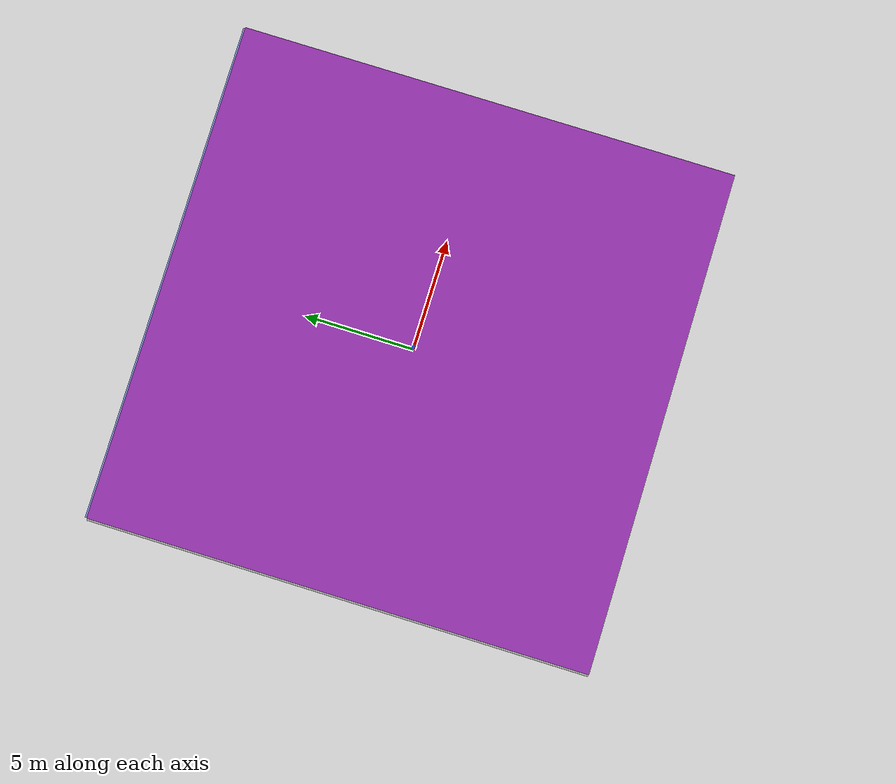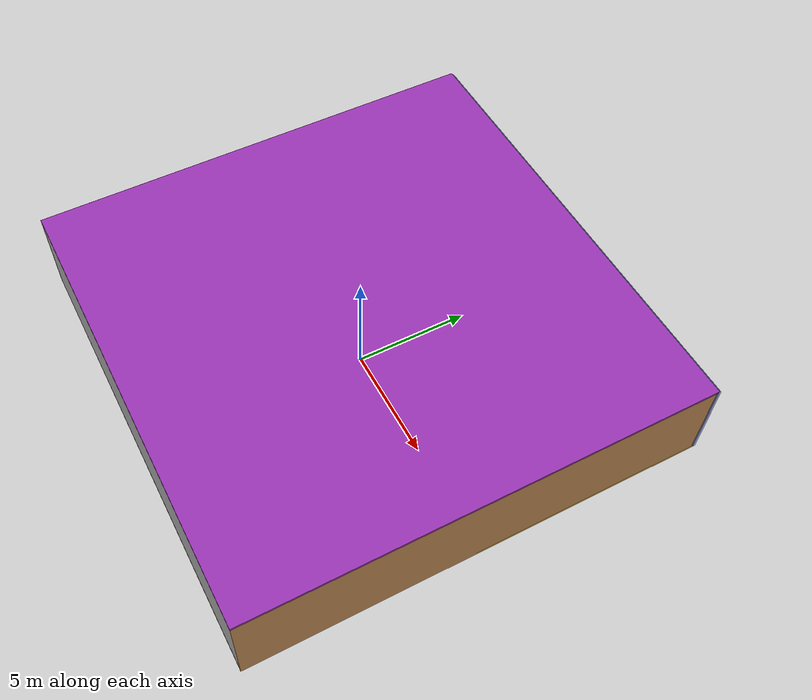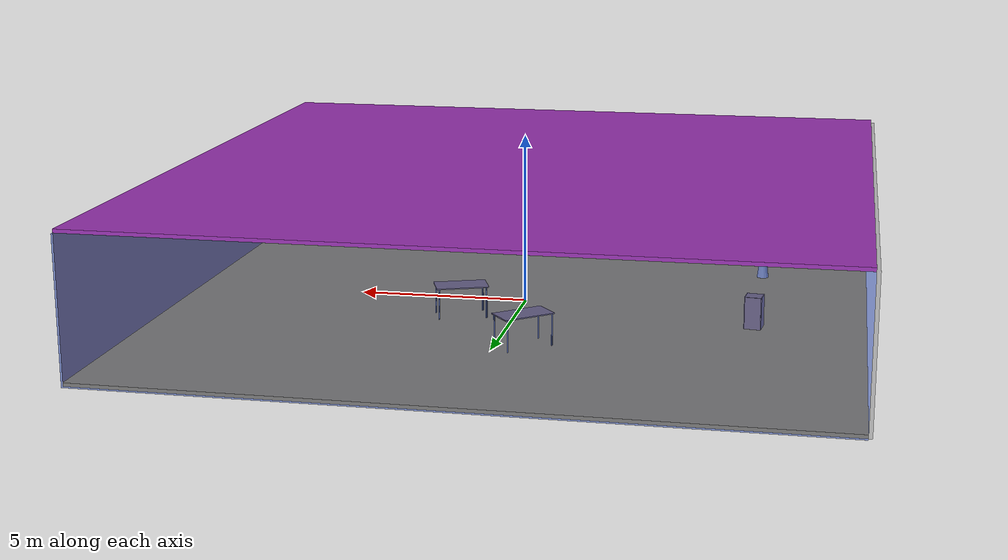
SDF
<sdf version="1.4">
 <world name="default">
  <physics type="ode">
   <max_step_size>0.001</max_step_size>
   <real_time_factor>1</real_time_factor>
   <real_time_update_rate>1000</real_time_update_rate>
   <gravity>0 0 -9.8</gravity>
  </physics>
  <scene><ambient>0.4 0.4 0.4 1</ambient><background>0.7 0.7 0.7 1</background><shadows>1</shadows></scene>
  <model name="Surrounding">
   <static>1</static>
   <link name="Ceiling">
    <collision name="Ceiling_Collision"><geometry><box><size>20 20 0.1</size></box></geometry></collision>
    <visual name="Ceiling_Visual">
     <geometry><box><size>20 20 0.1</size></box></geometry>
     <material>
      <script><uri>file://media/materials/scripts/gazebo.material</uri><name>Gazebo/Purple</name></script>
     </material>
    </visual>
    <pose>0 0 4.05 0 0 0</pose>
   </link>
   <link name="Wall_South">
    <collision name="Wall_South_Collision">
     <geometry><box><size>20 0 4</size></box></geometry>
     <pose>0 0 2 0 -0 0</pose>
    </collision>
    <visual name="Wall_South_Visual">
     <pose>0 0 2 0 -0 0</pose>
     <geometry><box><size>20 0 4</size></box></geometry>
     <material>
      <script><uri>file://media/materials/scripts/gazebo.material</uri><name>Gazebo/JointAnchor</name></script>
     </material>
    </visual>
    <velocity_decay><linear>0</linear><angular>0</angular></velocity_decay>
    <pose>0 -10 0 0 -0 0</pose>
   </link>
   <link name="Wall_East">
    <collision name="Wall_21_Collision">
     <geometry><box><size>20 0 4</size></box></geometry>
     <pose>0 0 2 0 -0 0</pose>
    </collision>
    <visual name="Wall_21_Visual">
     <pose>0 0 2 0 -0 0</pose>
     <geometry><box><size>20 0 4</size></box></geometry>
     <material>
      <script><uri>file://media/materials/scripts/gazebo.material</uri><name>Gazebo/WoodFloor</name></script>
     </material>
    </visual>
    <velocity_decay><linear>0</linear><angular>0</angular></velocity_decay>
    <pose>10 0 0 0 -0 1.5708</pose>
   </link>
   <link name="Wall_North">
    <collision name="Wall_22_Collision">
     <geometry><box><size>20 0.2 4</size></box></geometry>
     <pose>0 0 2 0 -0 0</pose>
    </collision>
    <visual name="Wall_22_Visual">
     <pose>0 0 2 0 -0 0</pose>
     <geometry><box><size>20 0.2 4</size></box></geometry>
     <material>
      <script><uri>file://media/materials/scripts/gazebo.material</uri><name>Gazebo/BlueTransparent</name></script>
     </material>
    </visual>
    <velocity_decay><linear>0</linear><angular>0</angular></velocity_decay>
    <pose>0 10 0 0 -0 0</pose>
   </link>
   <link name="Wall_West">
    <collision name="Wall_23_Collision">
     <geometry><box><size>20 0.2 4</size></box></geometry>
     <pose>0 0 2 0 -0 0</pose>
    </collision>
    <visual name="Wall_23_Visual">
     <pose>0 0 2 0 -0 0</pose>
     <geometry><box><size>20 0.2 4</size></box></geometry>
     <material>
      <script><uri>file://media/materials/scripts/gazebo.material</uri><name>Gazebo/GreyTransparent</name></script>
     </material>
    </visual>
    <velocity_decay><linear>0</linear><angular>0</angular></velocity_decay>
    <pose>-10 0 0 0 0 -1.5708</pose>
   </link>
   <link name="Ground_link">
    <collision name="collision">
     <pose>0 0 .05 0 -0 0</pose>
     <geometry><box><size>20 20 0.1</size></box></geometry>
    </collision>
    <visual name="visual">
     <pose>0 0 .05 0 -0 0</pose>
     <geometry><box><size>20 20 0.1</size></box></geometry>
     <material>
      <script><uri>file://media/materials/scripts/gazebo.material</uri><name>Gazebo/Gold</name></script>
     </material>
    </visual>
   </link>
   <static>1</static>
  </model>
  <spherical_coordinates>
   <surface_model>EARTH_WGS84</surface_model>
   <latitude_deg>0</latitude_deg>
   <longitude_deg>0</longitude_deg>
   <elevation>0</elevation>
   <heading_deg>0</heading_deg>
  </spherical_coordinates>
  <light name="lightball_0" type="diffuse">
   <diffuse>0.8 0.8 0.8 1</diffuse>
   <specular>0.2 0.2 0.2 1</specular>
   <attenuation>
    <range>100</range>
    <constant>0.7</constant>
    <linear>0.01</linear>
    <quadratic>0.001</quadratic>
   </attenuation>
   <direction>-0.5 0.1 -0.9</direction>
   <pose>-7.0221130712 4.44595572864 0.982963317497 0 0 0</pose>
  </light>
  <light name="lightball_1" type="diffuse">
   <diffuse>0.8 0.8 0.8 1</diffuse>
   <specular>0.2 0.2 0.2 1</specular>
   <attenuation>
    <range>100</range>
    <constant>0.7</constant>
    <linear>0.01</linear>
    <quadratic>0.001</quadratic>
   </attenuation>
   <direction>-0.5 0.1 -0.9</direction>
   <pose>-4.08871718535 -6.97036535205 2.59696566164 0 0 0</pose>
  </light>
  <light name="lightball_2" type="diffuse">
   <diffuse>0.8 0.8 0.8 1</diffuse>
   <specular>0.2 0.2 0.2 1</specular>
   <attenuation>
    <range>100</range>
    <constant>0.7</constant>
    <linear>0.01</linear>
    <quadratic>0.001</quadratic>
   </attenuation>
   <direction>-0.5 0.1 -0.9</direction>
   <pose>-2.92466432537 -9.22336242677 2.68320632824 0 0 0</pose>
  </light>
  <light name="lightball_3" type="diffuse">
   <diffuse>0.8 0.8 0.8 1</diffuse>
   <specular>0.2 0.2 0.2 1</specular>
   <attenuation>
    <range>100</range>
    <constant>0.7</constant>
    <linear>0.01</linear>
    <quadratic>0.001</quadratic>
   </attenuation>
   <direction>-0.5 0.1 -0.9</direction>
   <pose>8.13846208704 6.03519834956 2.77009763523 0 0 0</pose>
  </light>
  <light name="lightball_4" type="diffuse">
   <diffuse>0.8 0.8 0.8 1</diffuse>
   <specular>0.2 0.2 0.2 1</specular>
   <attenuation>
    <range>100</range>
    <constant>0.7</constant>
    <linear>0.01</linear>
    <quadratic>0.001</quadratic>
   </attenuation>
   <direction>-0.5 0.1 -0.9</direction>
   <pose>6.76817041899 -5.24779843504 0.576662341573 0 0 0</pose>
  </light>
  <light name="lightball_5" type="diffuse">
   <diffuse>0.8 0.8 0.8 1</diffuse>
   <specular>0.2 0.2 0.2 1</specular>
   <attenuation>
    <range>100</range>
    <constant>0.7</constant>
    <linear>0.01</linear>
    <quadratic>0.001</quadratic>
   </attenuation>
   <direction>-0.5 0.1 -0.9</direction>
   <pose>8.99160012023 3.15213794196 2.19442689658 0 0 0</pose>
  </light>
  <light name="lightball_6" type="diffuse">
   <diffuse>0.8 0.8 0.8 1</diffuse>
   <specular>0.2 0.2 0.2 1</specular>
   <attenuation>
    <range>100</range>
    <constant>0.7</constant>
    <linear>0.01</linear>
    <quadratic>0.001</quadratic>
   </attenuation>
   <direction>-0.5 0.1 -0.9</direction>
   <pose>-6.34590727839 -5.52040947115 3.64296693648 0 0 0</pose>
  </light>
  <light name="lightball_7" type="diffuse">
   <diffuse>0.8 0.8 0.8 1</diffuse>
   <specular>0.2 0.2 0.2 1</specular>
   <attenuation>
    <range>100</range>
    <constant>0.7</constant>
    <linear>0.01</linear>
    <quadratic>0.001</quadratic>
   </attenuation>
   <direction>-0.5 0.1 -0.9</direction>
   <pose>6.15433838228 -8.80467350246 2.29758422914 0 0 0</pose>
  </light>
  <light name="lightball_8" type="diffuse">
   <diffuse>0.8 0.8 0.8 1</diffuse>
   <specular>0.2 0.2 0.2 1</specular>
   <attenuation>
    <range>100</range>
    <constant>0.7</constant>
    <linear>0.01</linear>
    <quadratic>0.001</quadratic>
   </attenuation>
   <direction>-0.5 0.1 -0.9</direction>
   <pose>4.61682635253 -9.64612700389 1.29119901261 0 0 0</pose>
  </light>
  <light name="lightball_9" type="diffuse">
   <diffuse>0.8 0.8 0.8 1</diffuse>
   <specular>0.2 0.2 0.2 1</specular>
   <attenuation>
    <range>100</range>
    <constant>0.7</constant>
    <linear>0.01</linear>
    <quadratic>0.001</quadratic>
   </attenuation>
   <direction>-0.5 0.1 -0.9</direction>
   <pose>-8.78027617488 4.38360493023 3.31961379639 0 0 0</pose>
  </light>
  <light name="lightball_10" type="diffuse">
   <diffuse>0.8 0.8 0.8 1</diffuse>
   <specular>0.2 0.2 0.2 1</specular>
   <attenuation>
    <range>100</range>
    <constant>0.7</constant>
    <linear>0.01</linear>
    <quadratic>0.001</quadratic>
   </attenuation>
   <direction>-0.5 0.1 -0.9</direction>
   <pose>-8.21571336363 -7.80942783264 3.49911171962 0 0 0</pose>
  </light>
  <light name="lightball_11" type="diffuse">
   <diffuse>0.8 0.8 0.8 1</diffuse>
   <specular>0.2 0.2 0.2 1</specular>
   <attenuation>
    <range>100</range>
    <constant>0.7</constant>
    <linear>0.01</linear>
    <quadratic>0.001</quadratic>
   </attenuation>
   <direction>-0.5 0.1 -0.9</direction>
   <pose>-3.75497015258 2.58260642178 1.70271898652 0 0 0</pose>
  </light>
  <light name="lightball_12" type="diffuse">
   <diffuse>0.8 0.8 0.8 1</diffuse>
   <specular>0.2 0.2 0.2 1</specular>
   <attenuation>
    <range>100</range>
    <constant>0.7</constant>
    <linear>0.01</linear>
    <quadratic>0.001</quadratic>
   </attenuation>
   <direction>-0.5 0.1 -0.9</direction>
   <pose>9.70005035725 -2.13141566924 2.11990121583 0 0 0</pose>
  </light>
  <light name="lightball_13" type="diffuse">
   <diffuse>0.8 0.8 0.8 1</diffuse>
   <specular>0.2 0.2 0.2 1</specular>
   <attenuation>
    <range>100</range>
    <constant>0.7</constant>
    <linear>0.01</linear>
    <quadratic>0.001</quadratic>
   </attenuation>
   <direction>-0.5 0.1 -0.9</direction>
   <pose>5.74372036052 8.55418477823 0.832400764261 0 0 0</pose>
  </light>
  <include>
   <uri>model://construction_cone</uri>
   <pose>-6.82558127489 -3.71028811164 0 0 0 0.742131141379</pose>
  </include>
  <include><uri>model://cabinet</uri><pose>-6.86983934807 1.82115603131 0 0 0 1.45150708605</pose></include>
  <include>
   <uri>model://construction_cone</uri>
   <pose>-1.25063329165 -7.69446919498 0 0 0 2.67458145739</pose>
  </include>
  <include><uri>model://table</uri><pose>-0.839247095916 4.71354134139 0 0 0 0.692877309192</pose></include>
  <include><uri>model://table</uri><pose>1.46340793098 2.1673504082 0 0 0 0.356475473066</pose></include>
 </world>
</sdf>

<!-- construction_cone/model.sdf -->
<sdf version="1.5">
  <model name="Construction Cone">
    <link name="link">
      <collision name="collision">
        <geometry>
          <mesh>
            <scale>10 10 10</scale>
            <uri>file://isr-testbed/construction_cone/meshes/construction_cone.dae</uri>
          </mesh>
        </geometry>
      </collision>
      <visual name="visual">
        <geometry>
          <mesh>
            <scale>10 10 10</scale>
            <uri>file://isr-testbed/construction_cone/meshes/construction_cone.dae</uri>
          </mesh>
        </geometry>
      </visual>
    </link>
  </model>
</sdf>

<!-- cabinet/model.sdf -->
<sdf version="1.5">
  <model name="cabinet">
    <static>true</static>
    <link name="cabinet_bottom_plate">
      <inertial>
        <pose>0 0 -1 0 0 0</pose>
        <inertia>
          <ixx>2.050000</ixx>
          <ixy>0</ixy>
          <ixz>0</ixz>
          <iyy>2.050000</iyy>
          <iyz>0</iyz>
          <izz>2.050000</izz>
        </inertia>
        <mass>25.000000</mass>
      </inertial>
      <collision name="cabinet_bottom_plate_geom">
        <pose>0 0 0.010000 0 0 0</pose>
        <geometry>
          <box>
            <size>0.450000 0.450000 0.020000</size>
          </box>
        </geometry>
      </collision>
      <visual name="cabinet_bottom_plate_geom_visual">
        <pose>0 0 0.010000 0 0 0</pose>
        <geometry>
          <box>
            <size>0.450000 0.450000 0.020000</size>
          </box>
        </geometry>
        <material>
          <script>
            <uri>model://media/materials/scripts/gazebo.material</uri>
            <name>Gazebo/Wood</name>
          </script>
        </material>
      </visual>
      <collision name="cabinet_bottom_plate_geom_cabinet_back_plate">
        <pose>0.235000 0 0.510000 0 0 0</pose>
        <geometry>
          <box>
            <size>0.020000 0.450000 1.020000</size>
          </box>
        </geometry>
      </collision>
      <visual name="cabinet_bottom_plate_geom_cabinet_back_plate_visual">
        <pose>0.235000 0 0.510000 0 0 0</pose>
        <geometry>
          <box>
            <size>0.020000 0.450000 1.020000</size>
          </box>
        </geometry>
        <material>
          <script>
            <uri>model://media/materials/scripts/gazebo.material</uri>
            <name>Gazebo/Wood</name>
          </script>
        </material>
      </visual>
      <collision name="cabinet_bottom_plate_geom_cabinet_left_plate">
        <pose>0 0.235000 0.510000 0 0 0</pose>
        <geometry>
          <box>
            <size>0.450000 0.020000 1.020000</size>
          </box>
        </geometry>
      </collision>
      <visual name="cabinet_bottom_plate_geom_cabinet_left_plate_visual">
        <pose>0 0.235000 0.510000 0 0 0</pose>
        <geometry>
          <box>
            <size>0.450000 0.020000 1.020000</size>
          </box>
        </geometry>
        <material>
          <script>
            <uri>model://media/materials/scripts/gazebo.material</uri>
            <name>Gazebo/Wood</name>
          </script>
        </material>
      </visual>
      <collision name="cabinet_bottom_plate_geom_cabinet_middle_plate">
        <pose>0 0 0.510000 0 0 0</pose>
        <geometry>
          <box>
            <size>0.450000 0.450000 0.020000</size>
          </box>
        </geometry>
      </collision>
      <visual name="cabinet_bottom_plate_geom_cabinet_middle_plate_visual">
        <pose>0 0 0.510000 0 0 0</pose>
        <geometry>
          <box>
            <size>0.450000 0.450000 0.020000</size>
          </box>
        </geometry>
        <material>
          <script>
            <uri>model://media/materials/scripts/gazebo.material</uri>
            <name>Gazebo/Wood</name>
          </script>
        </material>
      </visual>
      <collision name="cabinet_bottom_plate_geom_cabinet_right_plate">
        <pose>0 -0.235000 0.510000 0 0 0</pose>
        <geometry>
          <box>
            <size>0.450000 0.020000 1.020000</size>
          </box>
        </geometry>
      </collision>
      <visual name="cabinet_bottom_plate_geom_cabinet_right_plate_visual">
        <pose>0 -0.235000 0.510000 0 0 0</pose>
        <geometry>
          <box>
            <size>0.450000 0.020000 1.020000</size>
          </box>
        </geometry>
        <material>
          <script>
            <uri>model://media/materials/scripts/gazebo.material</uri>
            <name>Gazebo/Wood</name>
          </script>
        </material>
      </visual>
      <collision name="cabinet_bottom_plate_geom_cabinet_top_plate">
        <pose>0 0 1.010000 0 0 0</pose>
        <geometry>
          <box>
            <size>0.450000 0.450000 0.020000</size>
          </box>
        </geometry>
      </collision>
      <visual name="cabinet_bottom_plate_geom_cabinet_top_plate_visual">
        <pose>0 0 1.010000 0 0 0</pose>
        <geometry>
          <box>
            <size>0.450000 0.450000 0.020000</size>
          </box>
        </geometry>
        <material>
          <script>
            <uri>model://media/materials/scripts/gazebo.material</uri>
            <name>Gazebo/Wood</name>
          </script>
        </material>
      </visual>
    </link>
  </model>
</sdf>

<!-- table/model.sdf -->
<sdf version="1.5">
  <model name="table">
    <static>true</static>
    <link name="link">
      <collision name="surface">
        <pose>0 0 1.0 0 0 0</pose>
        <geometry>
          <box>
            <size>1.5 0.8 0.03</size>
          </box>
        </geometry>
        <surface>
          <friction>
            <ode>
              <mu>0.6</mu>
              <mu2>0.6</mu2>
            </ode>
          </friction>
        </surface>
      </collision>
      <visual name="visual1">
        <pose>0 0 1.0 0 0 0</pose>
        <geometry>
          <box>
            <size>1.5 0.8 0.03</size>
          </box>
        </geometry>
        <material>
          <script>
            <uri>model://media/materials/scripts/gazebo.material</uri>
            <name>Gazebo/Wood</name>
          </script>
        </material>
      </visual>
      <collision name="front_left_leg">
        <pose>0.68 0.38 0.5 0 0 0</pose>
        <geometry>
          <cylinder>
            <radius>0.02</radius>
            <length>1.0</length>
          </cylinder>
        </geometry>
      </collision>
      <visual name="front_left_leg">
        <pose>0.68 0.38 0.5 0 0 0</pose>
        <geometry>
          <cylinder>
            <radius>0.02</radius>
            <length>1.0</length>
          </cylinder>
        </geometry>
        <material>
          <script>
            <uri>model://media/materials/scripts/gazebo.material</uri>
            <name>Gazebo/Grey</name>
          </script>
        </material>
      </visual>
      <collision name="front_right_leg">
        <pose>0.68 -0.38 0.5 0 0 0</pose>
        <geometry>
          <cylinder>
            <radius>0.02</radius>
            <length>1.0</length>
          </cylinder>
        </geometry>
      </collision>
      <visual name="front_right_leg">
        <pose>0.68 -0.38 0.5 0 0 0</pose>
        <geometry>
          <cylinder>
            <radius>0.02</radius>
            <length>1.0</length>
          </cylinder>
        </geometry>
        <material>
          <script>
            <uri>model://media/materials/scripts/gazebo.material</uri>
            <name>Gazebo/Grey</name>
          </script>
        </material>
      </visual>
      <collision name="back_right_leg">
        <pose>-0.68 -0.38 0.5 0 0 0</pose>
        <geometry>
          <cylinder>
            <radius>0.02</radius>
            <length>1.0</length>
          </cylinder>
        </geometry>
      </collision>
      <visual name="back_right_leg">
        <pose>-0.68 -0.38 0.5 0 0 0</pose>
        <geometry>
          <cylinder>
            <radius>0.02</radius>
            <length>1.0</length>
          </cylinder>
        </geometry>
        <material>
          <script>
            <uri>model://media/materials/scripts/gazebo.material</uri>
            <name>Gazebo/Grey</name>
          </script>
        </material>
      </visual>
      <collision name="back_left_leg">
        <pose>-0.68 0.38 0.5 0 0 0</pose>
        <geometry>
          <cylinder>
            <radius>0.02</radius>
            <length>1.0</length>
          </cylinder>
        </geometry>
      </collision>
      <visual name="back_left_leg">
        <pose>-0.68 0.38 0.5 0 0 0</pose>
        <geometry>
          <cylinder>
            <radius>0.02</radius>
            <length>1.0</length>
          </cylinder>
        </geometry>
        <material>
          <script>
            <uri>model://media/materials/scripts/gazebo.material</uri>
            <name>Gazebo/Grey</name>
          </script>
        </material>
      </visual>
    </link>
  </model>
</sdf>
